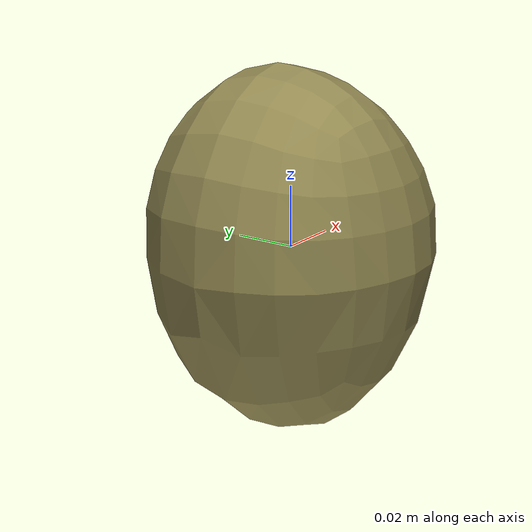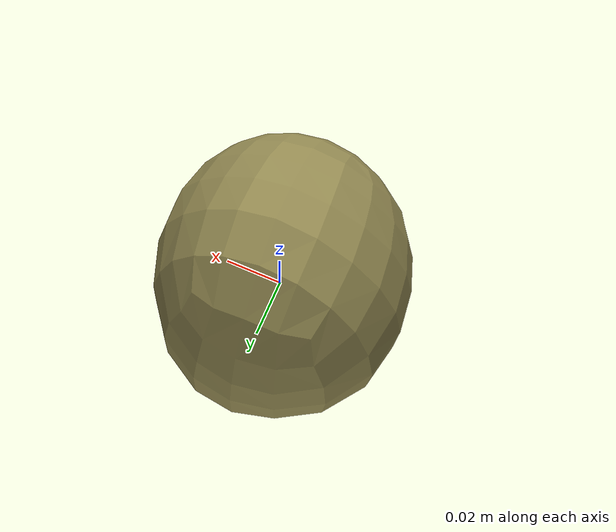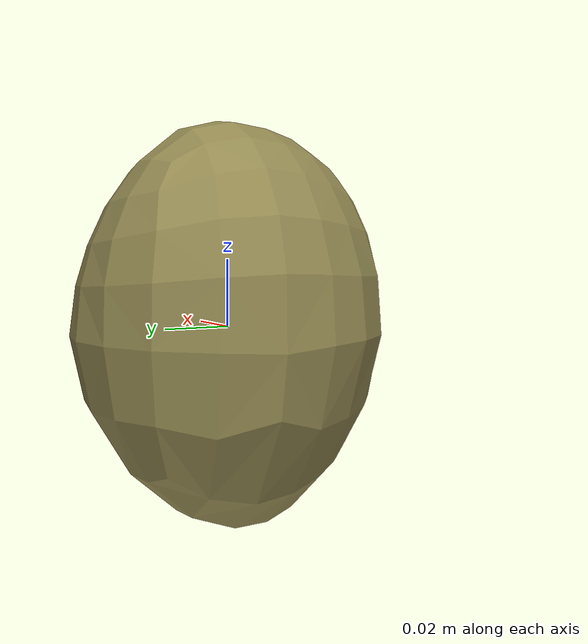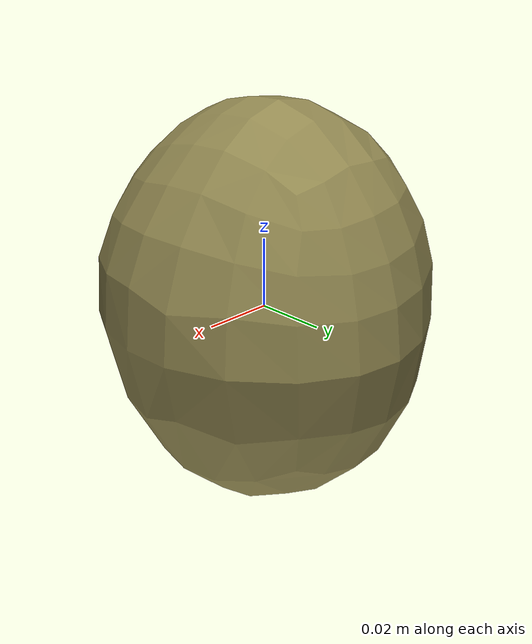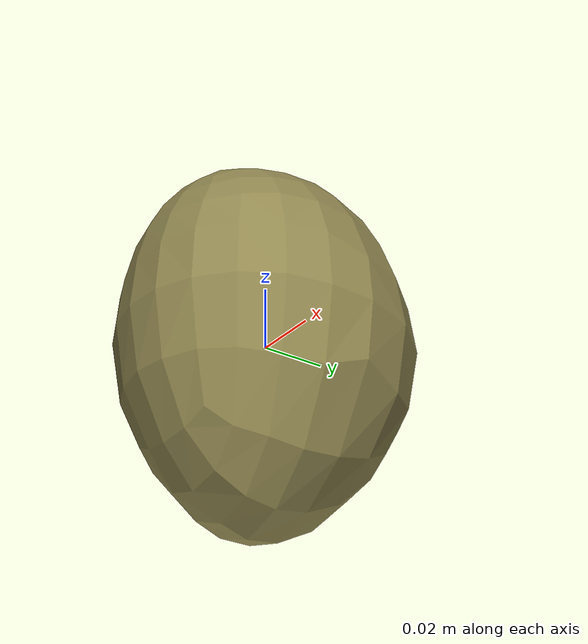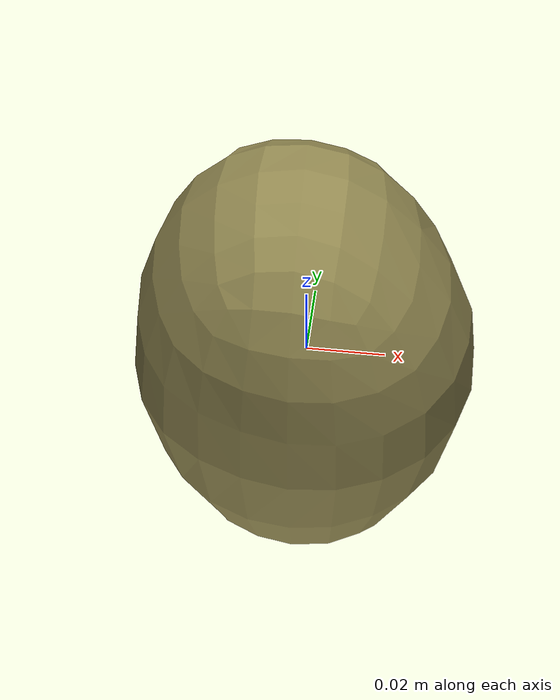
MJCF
<mujoco model="Potato_24">
  <compiler autolimits="true" boundmass="0.01" angle="radian"/>
  <default>
    <default class="/">
      <default class="__VISUAL_MJT__">
        <geom contype="0" conaffinity="0" group="0"/>
      </default>
      <default class="__STRUCTURAL_MJT__">
        <geom contype="8" conaffinity="15" group="4" friction="0.90000000000000002 0.90000000000000002 0.001" solref="0.025000000000000001 1" solimp="0.998 0.998 0.001"/>
      </default>
      <default class="__DYNAMIC_MJT__">
        <geom contype="1" conaffinity="15" group="4" friction="0.90000000000000002 0.90000000000000002 0.001" solref="0.025000000000000001 1" solimp="0.998 0.998 0.001"/>
      </default>
    </default>
  </default>
  <asset>
    <texture name="Potato3_Mat4" type="2d" file="Potato3_AlbedoTransparency.png"/>
    <material name="material_Potato3_Mat4" class="/" texture="Potato3_Mat4" specular="0.5" shininess="0.5" rgba="0.77941179999999999 0.75846409999999997 0.47567039999999999 1"/>
    <mesh name="Potato_24_potato_c4" class="/" file="Potato_24_potato_c4/Potato_24_potato_c4.obj" scale="1 1 1"/>
  </asset>
  <worldbody>
    <body name="Potato_24">
      <joint name="Potato_24_free" class="/" type="free" pos="0 0 0" axis="0 0 1" stiffness="0" range="0 0" armature="0" damping="0.10000000000000001" frictionloss="0"/>
      <body name="Potato_24_potato_c4" pos="-0.00052999999999999998 0.00051000000000000004 0.00068000000000000005" quat="1 0 0 0">
        <geom name="Potato_24_potato_c4" class="__VISUAL_MJT__" type="mesh" material="material_Potato3_Mat4" shellinertia="true" mesh="Potato_24_potato_c4"/>
        <geom name="Potato_24_PrimitiveCollider_0" class="__DYNAMIC_MJT__" type="capsule" size="0.044504165649414062 0.016721725463867188" rgba="0 1 0 1" pos="-0.0005283355712890625 -0.00051069085020571947 -0.00068139878567308187" quat="1.4751396609986736e-06 0.99999999999891198 0 0"/>
      </body>
    </body>
  </worldbody>
</mujoco>
